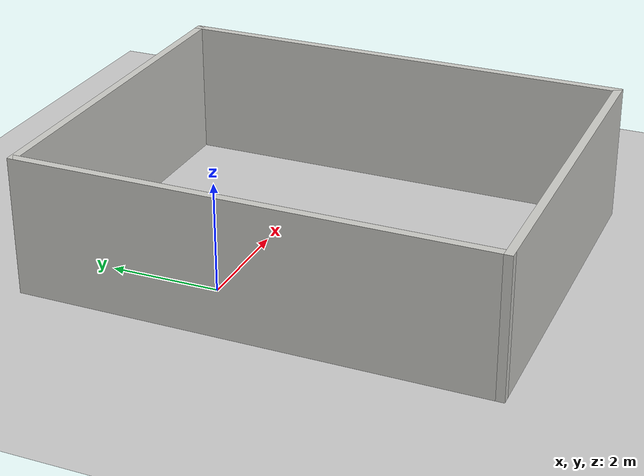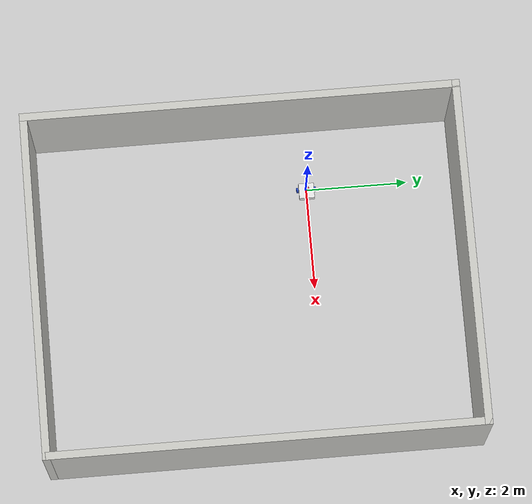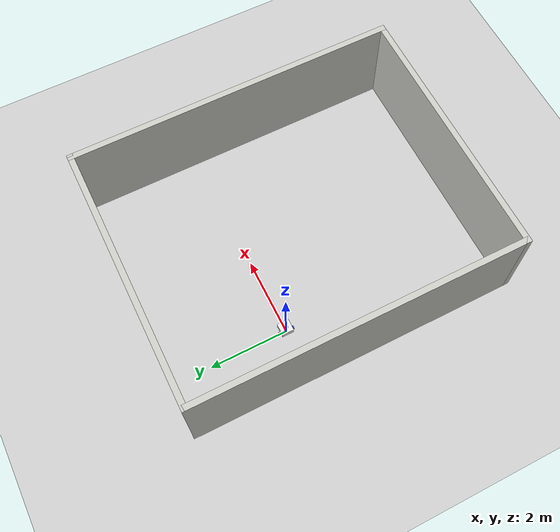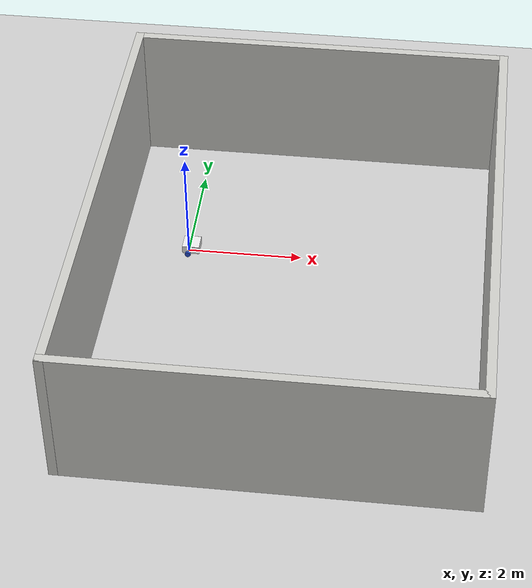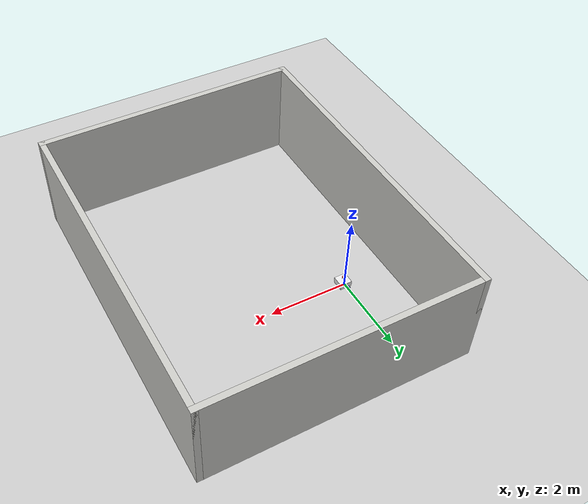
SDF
<sdf version="1.7">
 <world name="default">
  <light name="sun" type="directional">
   <pose>0 0 10 0 -0 0</pose>
   <diffuse>0.8 0.8 0.8 1</diffuse>
   <specular>0.2 0.2 0.2 1</specular>
   <attenuation>
    <range>1000</range>
    <constant>0.9</constant>
    <linear>0.01</linear>
    <quadratic>0.001</quadratic>
   </attenuation>
   <direction>-0.5 0.1 -0.9</direction>
   <spot><inner_angle>0</inner_angle><outer_angle>0</outer_angle><falloff>0</falloff></spot>
  </light>
  <model name="ground_plane">
   <static>1</static>
   <link name="link">
    <collision name="collision">
     <geometry><plane><normal>0 0 1</normal><size>100 100</size></plane></geometry>
     <surface><friction><ode><mu>100</mu><mu2>50</mu2></ode></friction></surface>
    </collision>
    <visual name="visual">
     <cast_shadows>0</cast_shadows>
     <geometry><plane><normal>0 0 1</normal><size>100 100</size></plane></geometry>
     <material>
      <script><uri>file://media/materials/scripts/gazebo.material</uri><name>Gazebo/Grey</name></script>
     </material>
    </visual>
   </link>
  </model>
  <gravity>0 0 -9.8</gravity>
  <magnetic_field>6e-06 2.3e-05 -4.2e-05</magnetic_field>
  <atmosphere type="adiabatic"/>
  <physics type="ode">
   <max_step_size>0.001</max_step_size>
   <real_time_factor>1</real_time_factor>
   <real_time_update_rate>1000</real_time_update_rate>
  </physics>
  <scene><ambient>0.4 0.4 0.4 1</ambient><background>0.7 0.7 0.7 1</background><shadows>1</shadows></scene>
  <spherical_coordinates>
   <surface_model>EARTH_WGS84</surface_model>
   <latitude_deg>0</latitude_deg>
   <longitude_deg>0</longitude_deg>
   <elevation>0</elevation>
   <heading_deg>0</heading_deg>
  </spherical_coordinates>
  <model name="my_bot">
   <link name="base_link">
    <inertial>
     <pose>0.058857 0 0.083857 0 -0 0</pose>
     <mass>0.7</mass>
     <inertia>
      <ixx>0.00724782</ixx>
      <ixy>0</ixy>
      <ixz>0.00111351</ixz>
      <iyy>0.0080813</iyy>
      <iyz>0</iyz>
      <izz>0.00855849</izz>
     </inertia>
    </inertial>
    <collision name="base_link_fixed_joint_lump__chassis_collision">
     <pose>0.05 0 0.075 0 -0 0</pose>
     <geometry><box><size>0.3 0.3 0.15</size></box></geometry>
    </collision>
    <collision name="base_link_fixed_joint_lump__caster_wheel_collision_1">
     <pose>0.14 0 0 0 -0 0</pose>
     <geometry><sphere><radius>0.05</radius></sphere></geometry>
     <surface><friction><ode><mu>0.001</mu><mu2>0.001</mu2></ode></friction></surface>
    </collision>
    <collision name="base_link_fixed_joint_lump__laser_frame_collision_2">
     <pose>0.022 0 0.212 0 -0 0</pose>
     <geometry><cylinder><length>0.04</length><radius>0.05</radius></cylinder></geometry>
    </collision>
    <visual name="base_link_fixed_joint_lump__chassis_visual">
     <pose>0.05 0 0.075 0 -0 0</pose>
     <geometry><box><size>0.3 0.3 0.15</size></box></geometry>
     <material>
      <script><name>Gazebo/White</name><uri>file://media/materials/scripts/gazebo.material</uri></script>
     </material>
    </visual>
    <visual name="base_link_fixed_joint_lump__caster_wheel_visual_1">
     <pose>0.14 0 0 0 -0 0</pose>
     <geometry><sphere><radius>0.05</radius></sphere></geometry>
     <material>
      <script><name>Gazebo/Black</name><uri>file://media/materials/scripts/gazebo.material</uri></script>
     </material>
    </visual>
    <visual name="base_link_fixed_joint_lump__laser_frame_visual_2">
     <pose>0.022 0 0.212 0 -0 0</pose>
     <geometry><cylinder><length>0.04</length><radius>0.05</radius></cylinder></geometry>
     <material>
      <script><name>Gazebo/Red</name><uri>file://media/materials/scripts/gazebo.material</uri></script>
     </material>
    </visual>
    <visual name="base_link_fixed_joint_lump__laser_frame_visual_3">
     <pose>0.022 0 0.162 0 -0 0</pose>
     <geometry><cylinder><length>0.1</length><radius>0.01</radius></cylinder></geometry>
     <material>
      <script><name>Gazebo/Red</name><uri>file://media/materials/scripts/gazebo.material</uri></script>
     </material>
    </visual>
    <sensor name="laser" type="ray">
     <visualize>1</visualize>
     <update_rate>10</update_rate>
     <ray>
      <scan>
       <horizontal>
        <samples>360</samples>
        <resolution>1</resolution>
        <min_angle>-3.14</min_angle>
        <max_angle>3.14</max_angle>
       </horizontal>
       <vertical><samples>1</samples><min_angle>0</min_angle><max_angle>0</max_angle></vertical>
      </scan>
      <range><min>0.3</min><max>12</max><resolution>0.01</resolution></range>
     </ray>
     <plugin name="laser_controller" filename="libgazebo_ros_ray_sensor.so">
      <ros><argument>~/out:=scan</argument></ros>
      <output_type>sensor_msgs/LaserScan</output_type>
      <frame_name>laser_frame</frame_name>
     </plugin>
     <pose>0.022 0 0.212 0 -0 0</pose>
    </sensor>
   </link>
   <joint name="left_wheel_joint" type="revolute">
    <pose relative_to="base_link">0 0.175 0 -1.5708 0 0</pose>
    <parent>base_link</parent>
    <child>left_wheel</child>
    <axis>
     <xyz>0 0 1</xyz>
     <limit><lower>-1e+16</lower><upper>1e+16</upper></limit>
     <dynamics><spring_reference>0</spring_reference><spring_stiffness>0</spring_stiffness></dynamics>
    </axis>
   </joint>
   <link name="left_wheel">
    <pose relative_to="left_wheel_joint">0 0 0 0 -0 0</pose>
    <inertial>
     <mass>0.1</mass>
     <inertia>
      <ixx>7.58333e-05</ixx>
      <ixy>0</ixy>
      <ixz>0</ixz>
      <iyy>7.58333e-05</iyy>
      <iyz>0</iyz>
      <izz>0.000125</izz>
     </inertia>
    </inertial>
    <collision name="left_wheel_collision">
     <geometry><cylinder><length>0.04</length><radius>0.05</radius></cylinder></geometry>
    </collision>
    <visual name="left_wheel_visual">
     <geometry><cylinder><length>0.04</length><radius>0.05</radius></cylinder></geometry>
     <material>
      <script><name>Gazebo/Blue</name><uri>file://media/materials/scripts/gazebo.material</uri></script>
     </material>
    </visual>
   </link>
   <joint name="right_wheel_joint" type="revolute">
    <pose relative_to="base_link">0 -0.175 0 1.5708 -0 0</pose>
    <parent>base_link</parent>
    <child>right_wheel</child>
    <axis>
     <xyz>0 0 -1</xyz>
     <limit><lower>-1e+16</lower><upper>1e+16</upper></limit>
     <dynamics><spring_reference>0</spring_reference><spring_stiffness>0</spring_stiffness></dynamics>
    </axis>
   </joint>
   <link name="right_wheel">
    <pose relative_to="right_wheel_joint">0 0 0 0 -0 0</pose>
    <inertial>
     <mass>0.1</mass>
     <inertia>
      <ixx>7.58333e-05</ixx>
      <ixy>0</ixy>
      <ixz>0</ixz>
      <iyy>7.58333e-05</iyy>
      <iyz>0</iyz>
      <izz>0.000125</izz>
     </inertia>
    </inertial>
    <collision name="right_wheel_collision">
     <geometry><cylinder><length>0.04</length><radius>0.05</radius></cylinder></geometry>
    </collision>
    <visual name="right_wheel_visual">
     <geometry><cylinder><length>0.04</length><radius>0.05</radius></cylinder></geometry>
     <material>
      <script><name>Gazebo/Blue</name><uri>file://media/materials/scripts/gazebo.material</uri></script>
     </material>
    </visual>
   </link>
   <static>0</static>
   <plugin name="gazebo_ros2_control" filename="libgazebo_ros2_control.so">
    <parameters>/home/balaraman1928/dev_ws/install/my_bot/share/my_bot/config/my_controllers.yaml</parameters>
   </plugin>
   <pose>0.002192 5e-06 0.05 -0 3e-06 0.000515</pose>
  </model>
  <model name="altered.world">
   <pose>2.02276 -1.21773 0 0 -0 0</pose>
   <link name="Wall_10">
    <collision name="Wall_10_Collision">
     <geometry><box><size>8.5 0.15 2.5</size></box></geometry>
     <pose>0 0 1.25 0 -0 0</pose>
    </collision>
    <visual name="Wall_10_Visual">
     <pose>0 0 1.25 0 -0 0</pose>
     <geometry><box><size>8.5 0.15 2.5</size></box></geometry>
     <material>
      <script><uri>file://media/materials/scripts/gazebo.material</uri><name>Gazebo/CeilingTiled</name></script>
      <ambient>1 1 1 1</ambient>
     </material>
     <meta><layer>0</layer></meta>
    </visual>
    <pose>-3.3 0 0 0 -0 1.5708</pose>
   </link>
   <link name="Wall_11">
    <collision name="Wall_11_Collision">
     <geometry><box><size>6.75 0.15 2.5</size></box></geometry>
     <pose>0 0 1.25 0 -0 0</pose>
    </collision>
    <visual name="Wall_11_Visual">
     <pose>0 0 1.25 0 -0 0</pose>
     <geometry><box><size>6.75 0.15 2.5</size></box></geometry>
     <material>
      <script><uri>file://media/materials/scripts/gazebo.material</uri><name>Gazebo/CeilingTiled</name></script>
      <ambient>1 1 1 1</ambient>
     </material>
     <meta><layer>0</layer></meta>
    </visual>
    <pose>0 4.175 0 0 -0 0</pose>
   </link>
   <link name="Wall_8">
    <collision name="Wall_8_Collision">
     <geometry><box><size>8.5 0.15 2.5</size></box></geometry>
     <pose>0 0 1.25 0 -0 0</pose>
    </collision>
    <visual name="Wall_8_Visual">
     <pose>0 0 1.25 0 -0 0</pose>
     <geometry><box><size>8.5 0.15 2.5</size></box></geometry>
     <material>
      <script><uri>file://media/materials/scripts/gazebo.material</uri><name>Gazebo/CeilingTiled</name></script>
      <ambient>1 1 1 1</ambient>
     </material>
     <meta><layer>0</layer></meta>
    </visual>
    <pose>3.3 0 0 0 -0 -1.5708</pose>
   </link>
   <link name="Wall_9">
    <collision name="Wall_9_Collision">
     <geometry><box><size>6.75 0.15 2.5</size></box></geometry>
     <pose>0 0 1.25 0 -0 0</pose>
    </collision>
    <visual name="Wall_9_Visual">
     <pose>0 0 1.25 0 -0 0</pose>
     <geometry><box><size>6.75 0.15 2.5</size></box></geometry>
     <material>
      <script><uri>file://media/materials/scripts/gazebo.material</uri><name>Gazebo/CeilingTiled</name></script>
      <ambient>1 1 1 1</ambient>
     </material>
     <meta><layer>0</layer></meta>
    </visual>
    <pose>0 -4.175 0 0 -0 3.14159</pose>
   </link>
   <static>1</static>
  </model>
 </world>
</sdf>
